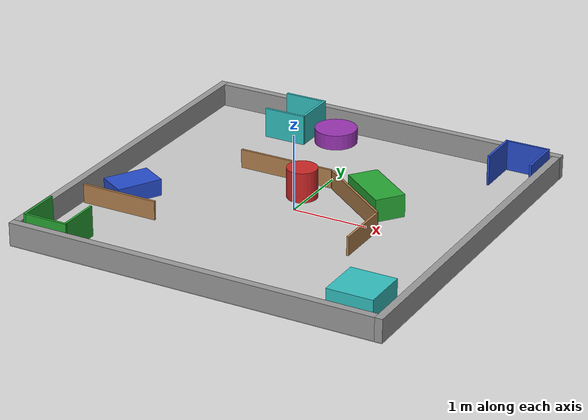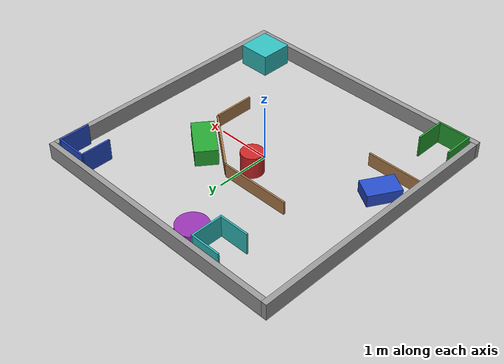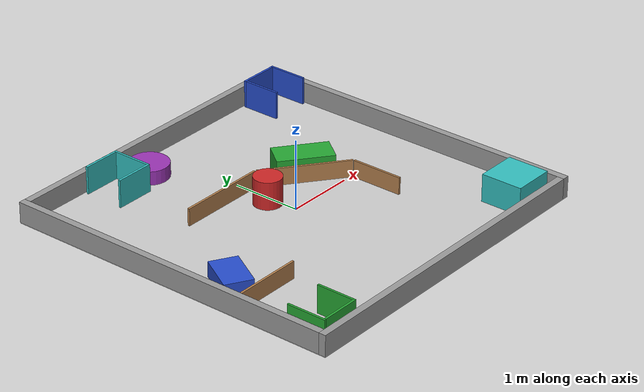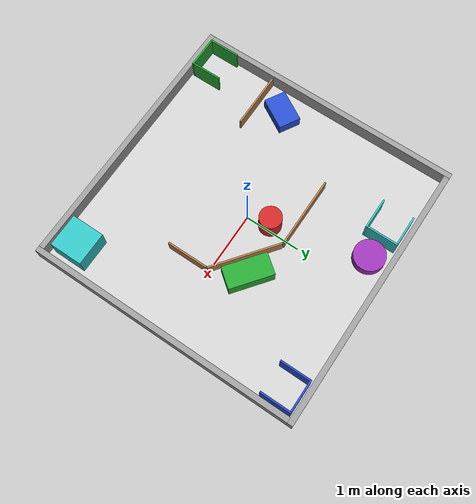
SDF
<sdf version="1.6">
 <world name="default">
  <light name="sun" type="directional">
   <pose>0 0 10 0 -0 0</pose>
   <diffuse>0.8 0.8 0.8 1</diffuse>
   <specular>0.2 0.2 0.2 1</specular>
   <attenuation>
    <range>1000</range>
    <constant>0.9</constant>
    <linear>0.01</linear>
    <quadratic>0.001</quadratic>
   </attenuation>
   <direction>-0.5 0.1 -0.9</direction>
  </light>
  <gravity>0 0 -9.8</gravity>
  <magnetic_field>6e-06 2.3e-05 -4.2e-05</magnetic_field>
  <atmosphere type="adiabatic"/>
  <physics name="default_physics" default="0" type="ode">
   <max_step_size>0.001</max_step_size>
   <real_time_factor>1</real_time_factor>
   <real_time_update_rate>1000</real_time_update_rate>
  </physics>
  <scene><ambient>0.4 0.4 0.4 1</ambient><background>0.7 0.7 0.7 1</background><shadows>1</shadows></scene>
  <spherical_coordinates>
   <surface_model>EARTH_WGS84</surface_model>
   <latitude_deg>0</latitude_deg>
   <longitude_deg>0</longitude_deg>
   <elevation>0</elevation>
   <heading_deg>0</heading_deg>
  </spherical_coordinates>
  <include><uri>model://beaconing</uri></include>
  <include><uri>model://arena_walls</uri></include>
 </world>
</sdf>

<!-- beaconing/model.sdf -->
<sdf version="1.4">
<model name="beaconing">
  <static>true</static>
    <link name="floor">
      <collision name="collision">
        <geometry>
          <plane>
            <normal>0 0 1</normal>
            <size>5.0 5.0</size>
          </plane>
        </geometry>
        <surface>
          <friction>
            <ode>
              <mu>100</mu>
              <mu2>50</mu2>
            </ode>
          </friction>
        </surface>
      </collision>
      <visual name="visual">
        <cast_shadows>false</cast_shadows>
        <geometry>
          <plane>
            <normal>0 0 1</normal>
            <size>5.0 5.0</size>
          </plane>
        </geometry>
        <material>
          <script>
            <uri>model://beaconing/materials/scripts</uri>
            <uri>model://beaconing/materials/textures</uri>
            <name>BeaconingFloor/Image</name>
          </script>
        </material>
      </visual>
    </link>
    <link name='start_zone_A'>
      <pose frame=''>-2.06729 -2.09253 0.2 0 0 1.571</pose>
      <collision name='Right_Wall_Collision'>
        <geometry>
          <box>
            <size>0.57 0.03 0.4</size>
          </box>
        </geometry>
        <pose frame=''>0 0.2850 0 0 0 0</pose>
      </collision>
      <visual name='Right_Wall_Visual'>
        <pose frame=''>0 0.2850 0 0 0 0</pose>
        <geometry>
          <box>
            <size>0.57 0.03 0.4</size>
          </box>
        </geometry>
        <material>
          <script>
            <uri>file://media/materials/scripts/gazebo.material</uri>
            <name>Gazebo/Green</name>
          </script>
        </material>
      </visual>
      <collision name='Back_Wall_Collision'>
        <geometry>
          <box>
            <size>0.57 0.03 0.4</size>
          </box>
        </geometry>
        <pose frame=''>-0.27 -0.015 0 0 0 1.571</pose>
      </collision>
      <visual name='Back_Wall_Visual'>
        <pose frame=''>-0.27 -0.015 0 0 0 1.571</pose>
        <geometry>
          <box>
            <size>0.57 0.03 0.4</size>
          </box>
        </geometry>
        <material>
          <script>
            <uri>file://media/materials/scripts/gazebo.material</uri>
            <name>Gazebo/Green</name>
          </script>
        </material>
      </visual>
      <collision name='Left_Wall_Collision'>
        <geometry>
          <box>
            <size>0.54 0.03 0.4</size>
          </box>
        </geometry>
        <pose frame=''>0.015 -0.285 0 0 0 0</pose>
      </collision>
      <visual name='Left_Wall_Visual'>
        <pose frame=''>0.015 -0.285 0 0 0 0</pose>
        <geometry>
          <box>
            <size>0.54 0.03 0.4</size>
          </box>
        </geometry>
        <material>
          <script>
            <uri>file://media/materials/scripts/gazebo.material</uri>
            <name>Gazebo/Green</name>
          </script>
        </material>
      </visual>
    </link>
    <link name='start_zone_B'>
      <pose frame=''>-1.12187 2.06729 0.2 0 0 3.142</pose>
      <collision name='Right_Wall_Collision'>
        <geometry>
          <box>
            <size>0.57 0.03 0.4</size>
          </box>
        </geometry>
        <pose frame=''>0 0.2850 0 0 0 0</pose>
      </collision>
      <visual name='Right_Wall_Visual'>
        <pose frame=''>0 0.2850 0 0 0 0</pose>
        <geometry>
          <box>
            <size>0.57 0.03 0.4</size>
          </box>
        </geometry>
        <material>
          <script>
            <uri>file://media/materials/scripts/gazebo.material</uri>
            <name>Gazebo/Turquoise</name>
          </script>
        </material>
      </visual>
      <collision name='Back_Wall_Collision'>
        <geometry>
          <box>
            <size>0.57 0.03 0.4</size>
          </box>
        </geometry>
        <pose frame=''>-0.27 -0.015 0 0 0 1.571</pose>
      </collision>
      <visual name='Back_Wall_Visual'>
        <pose frame=''>-0.27 -0.015 0 0 0 1.571</pose>
        <geometry>
          <box>
            <size>0.57 0.03 0.4</size>
          </box>
        </geometry>
        <material>
          <script>
            <uri>file://media/materials/scripts/gazebo.material</uri>
            <name>Gazebo/Turquoise</name>
          </script>
        </material>
      </visual>
      <collision name='Left_Wall_Collision'>
        <geometry>
          <box>
            <size>0.54 0.03 0.4</size>
          </box>
        </geometry>
        <pose frame=''>0.015 -0.285 0 0 0 0</pose>
      </collision>
      <visual name='Left_Wall_Visual'>
        <pose frame=''>0.015 -0.285 0 0 0 0</pose>
        <geometry>
          <box>
            <size>0.54 0.03 0.4</size>
          </box>
        </geometry>
        <material>
          <script>
            <uri>file://media/materials/scripts/gazebo.material</uri>
            <name>Gazebo/Turquoise</name>
          </script>
        </material>
      </visual>
    </link>
    <link name='start_zone_C'>
      <pose frame=''>2.06729 2.09253 0.2 0 0 -1.571</pose>
      <collision name='Right_Wall_Collision'>
        <geometry>
          <box>
            <size>0.57 0.03 0.4</size>
          </box>
        </geometry>
        <pose frame=''>0 0.2850 0 0 0 0</pose>
      </collision>
      <visual name='Right_Wall_Visual'>
        <pose frame=''>0 0.2850 0 0 0 0</pose>
        <geometry>
          <box>
            <size>0.57 0.03 0.4</size>
          </box>
        </geometry>
        <material>
          <script>
            <uri>file://media/materials/scripts/gazebo.material</uri>
            <name>Gazebo/Blue</name>
          </script>
        </material>
      </visual>
      <collision name='Back_Wall_Collision'>
        <geometry>
          <box>
            <size>0.57 0.03 0.4</size>
          </box>
        </geometry>
        <pose frame=''>-0.27 -0.015 0 0 0 1.571</pose>
      </collision>
      <visual name='Back_Wall_Visual'>
        <pose frame=''>-0.27 -0.015 0 0 0 1.571</pose>
        <geometry>
          <box>
            <size>0.57 0.03 0.4</size>
          </box>
        </geometry>
        <material>
          <script>
            <uri>file://media/materials/scripts/gazebo.material</uri>
            <name>Gazebo/Blue</name>
          </script>
        </material>
      </visual>
      <collision name='Left_Wall_Collision'>
        <geometry>
          <box>
            <size>0.54 0.03 0.4</size>
          </box>
        </geometry>
        <pose frame=''>0.015 -0.285 0 0 0 0</pose>
      </collision>
      <visual name='Left_Wall_Visual'>
        <pose frame=''>0.015 -0.285 0 0 0 0</pose>
        <geometry>
          <box>
            <size>0.54 0.03 0.4</size>
          </box>
        </geometry>
        <material>
          <script>
            <uri>file://media/materials/scripts/gazebo.material</uri>
            <name>Gazebo/Blue</name>
          </script>
        </material>
      </visual>
    </link>
    <link name='wall_1'>
      <pose frame=''>-1.86568 -1.06347 0.125 0 0 0</pose>
      <collision name='coll'>
        <geometry>
          <box>
            <size>1.03 0.03 0.25</size>
          </box>
        </geometry>
      </collision>
      <visual name='vis'>
        <geometry>
          <box>
            <size>1.03 0.03 0.25</size>
          </box>
        </geometry>
        <material>
          <script>
            <uri>file://media/materials/scripts/gazebo.material</uri>
            <name>Gazebo/Wood</name>
          </script>
        </material>
      </visual>
    </link>
    <link name='wall_2'>
      <pose frame=''>-0.54713 0.78466 0.125 0 0 0</pose>
      <collision name='coll'>
        <geometry>
          <box>
            <size>1.3 0.03 0.25</size>
          </box>
        </geometry>
      </collision>
      <visual name='vis'>
        <geometry>
          <box>
            <size>1.3 0.03 0.25</size>
          </box>
        </geometry>
        <material>
          <script>
            <uri>file://media/materials/scripts/gazebo.material</uri>
            <name>Gazebo/Wood</name>
          </script>
        </material>
      </visual>
    </link>
    <link name='wall_3'>
      <pose frame=''>1.15937 -0.41107 0.125 0 0 0</pose>
      <collision name='coll'>
        <geometry>
          <box>
            <size>0.03 0.75 0.25</size>
          </box>
        </geometry>
      </collision>
      <visual name='vis'>
        <geometry>
          <box>
            <size>0.03 0.75 0.25</size>
          </box>
        </geometry>
        <material>
          <script>
            <uri>file://media/materials/scripts/gazebo.material</uri>
            <name>Gazebo/Wood</name>
          </script>
        </material>
      </visual>
    </link>
    <link name='wall_4'>
      <pose frame=''>0.63856 0.37770 0.125 0 0 0.917</pose>
      <collision name='coll'>
        <geometry>
          <box>
            <size>0.03 1.3 0.25</size>
          </box>
        </geometry>
      </collision>
      <visual name='vis'>
        <geometry>
          <box>
            <size>0.03 1.3 0.25</size>
          </box>
        </geometry>
        <material>
          <script>
            <uri>file://media/materials/scripts/gazebo.material</uri>
            <name>Gazebo/Wood</name>
          </script>
        </material>
      </visual>
    </link>
    <link name='cyl_a'>
      <pose frame=''>-0.10077 0.38902 0.2 0 0 0</pose>
      <collision name='coll'>
        <geometry>
          <cylinder>
            <radius>0.2</radius>
            <length>0.4</length>
          </cylinder>
        </geometry>
        <max_contacts>10</max_contacts>
        <surface>
          <bounce/>
          <friction>
            <ode/>
          </friction>
          <contact>
            <ode/>
          </contact>
        </surface>
      </collision>
      <visual name='vis'>
        <geometry>
          <cylinder>
            <radius>0.2</radius>
            <length>0.4</length>
          </cylinder>
        </geometry>
        <material>
          <script>
            <uri>file://media/materials/scripts/gazebo.material</uri>
            <name>Gazebo/Red</name>
          </script>
        </material>
      </visual>
    </link>
    <link name='cyl_b'>
      <pose frame=''>-0.52038 2.06950 0.1 0 0 0</pose>
      <collision name='coll'>
        <geometry>
          <cylinder>
            <radius>0.28</radius>
            <length>0.2</length>
          </cylinder>
        </geometry>
        <max_contacts>10</max_contacts>
        <surface>
          <bounce/>
          <friction>
            <ode/>
          </friction>
          <contact>
            <ode/>
          </contact>
        </surface>
      </collision>
      <visual name='vis'>
        <geometry>
          <cylinder>
            <radius>0.28</radius>
            <length>0.2</length>
          </cylinder>
        </geometry>
        <material>
          <script>
            <uri>file://media/materials/scripts/gazebo.material</uri>
            <name>Gazebo/Purple</name>
          </script>
        </material>
      </visual>
    </link>
    <link name='box_a'>
      <pose frame=''>-1.97132 -0.59194 0.11 0 0 -0.524</pose>
      <collision name='coll'>
        <geometry>
          <box>
            <size>0.4 0.6 0.22</size>
          </box>
        </geometry>
      </collision>
      <visual name='vis'>
        <geometry>
          <box>
            <size>0.4 0.6 0.22</size>
          </box>
        </geometry>
        <material>
          <script>
            <uri>file://media/materials/scripts/gazebo.material</uri>
            <name>Gazebo/Blue</name>
          </script>
        </material>
      </visual>
    </link>
    <link name='box_b'>
      <pose frame=''>0.84056 0.57438 0.15 0 0 -0.655</pose>
      <collision name='coll'>
        <geometry>
          <box>
            <size>0.8 0.4 0.3</size>
          </box>
        </geometry>
      </collision>
      <visual name='vis'>
        <geometry>
          <box>
            <size>0.8 0.4 0.3</size>
          </box>
        </geometry>
        <material>
          <script>
            <uri>file://media/materials/scripts/gazebo.material</uri>
            <name>Gazebo/Green</name>
          </script>
        </material>
      </visual>
    </link>
    <link name='box_c'>
      <pose frame=''>1.98731 -2.01653 0.2 0 0 0</pose>
      <collision name='coll'>
        <geometry>
          <box>
            <size>0.6 0.6 0.4</size>
          </box>
        </geometry>
      </collision>
      <visual name='vis'>
        <geometry>
          <box>
            <size>0.6 0.6 0.4</size>
          </box>
        </geometry>
        <material>
          <script>
            <uri>file://media/materials/scripts/gazebo.material</uri>
            <name>Gazebo/Turquoise</name>
          </script>
        </material>
      </visual>
    </link>
  </model>
</sdf>

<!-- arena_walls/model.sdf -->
<sdf version='1.6'>
  <model name='arena_walls'>
    <pose frame=''>0 0 0.15 0 0 0</pose>
    <link name='Right_Wall'>
      <collision name='Right_Wall_Collision'>
        <geometry>
          <box>
            <size>4.90 0.10 0.3</size>
          </box>
        </geometry>
        <pose frame=''>0 0 0 0 0 0</pose>
      </collision>
      <visual name='Right_Wall_Visual'>
        <pose frame=''>0 0 0 0 0 0</pose>
        <geometry>
          <box>
            <size>4.90 0.10 0.3</size>
          </box>
        </geometry>
        <material>
          <script>
            <uri>file://media/materials/scripts/gazebo.material</uri>
            <name>Gazebo/Grey</name>
          </script>
          <ambient>1 1 1 1</ambient>
        </material>
      </visual>
      <pose frame=''>0.05 2.45 0 0 0 0</pose>
    </link>
    <link name='Back_Wall'>
      <collision name='Back_Wall_Collision'>
        <geometry>
          <box>
            <size>4.90 0.10 0.3</size>
          </box>
        </geometry>
        <pose frame=''>0 0 0 0 0 0</pose>
      </collision>
      <visual name='Back_Wall_Visual'>
        <pose frame=''>0 0 0 0 0 0</pose>
        <geometry>
          <box>
            <size>4.90 0.10 0.3</size>
          </box>
        </geometry>
        <material>
          <script>
            <uri>file://media/materials/scripts/gazebo.material</uri>
            <name>Gazebo/Grey</name>
          </script>
          <ambient>1 1 1 1</ambient>
        </material>
      </visual>
      <pose frame=''>-2.45 0.05 0 0 0 1.5708</pose>
    </link>
    <link name='Left_Wall'>
      <collision name='Left_Wall_Collision'>
        <geometry>
          <box>
            <size>4.90 0.10 0.3</size>
          </box>
        </geometry>
        <pose frame=''>0 0 0 0 0 0</pose>
      </collision>
      <visual name='Left_Wall_Visual'>
        <pose frame=''>0 0 0 0 0 0</pose>
        <geometry>
          <box>
            <size>4.90 0.10 0.3</size>
          </box>
        </geometry>
        <material>
          <script>
            <uri>file://media/materials/scripts/gazebo.material</uri>
            <name>Gazebo/Grey</name>
          </script>
          <ambient>1 1 1 1</ambient>
        </material>
      </visual>
      <pose frame=''>-0.05 -2.45 0 0 0 0</pose>
    </link>
    <link name='Front_Wall'>
      <collision name='Front_Wall_Collision'>
        <geometry>
          <box>
            <size>4.90 0.10 0.3</size>
          </box>
        </geometry>
        <pose frame=''>0 0 0 0 0 0</pose>
      </collision>
      <visual name='Front_Wall_Visual'>
        <pose frame=''>0 0 0 0 0 0</pose>
        <geometry>
          <box>
            <size>4.90 0.10 0.3</size>
          </box>
        </geometry>
        <material>
          <script>
            <uri>file://media/materials/scripts/gazebo.material</uri>
            <name>Gazebo/Grey</name>
          </script>
          <ambient>1 1 1 1</ambient>
        </material>
      </visual>
      <pose frame=''>2.45 -0.05 0 0 0 1.5708</pose>
    </link>
    <static>1</static>
  </model>
</sdf>
